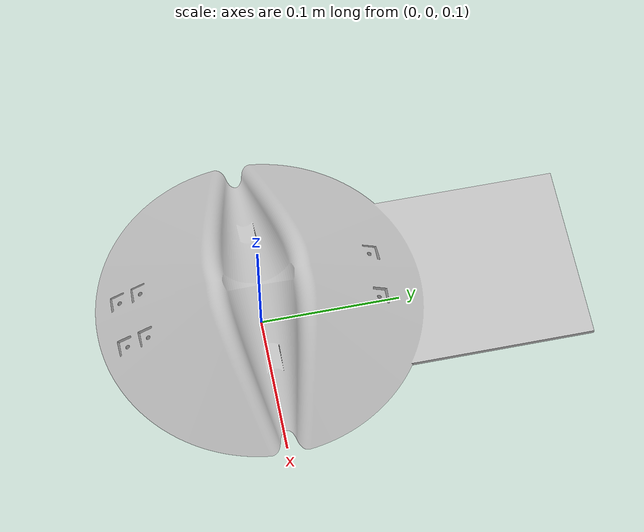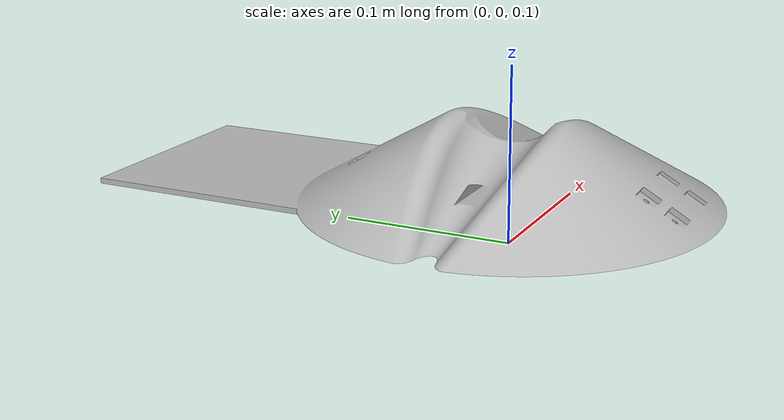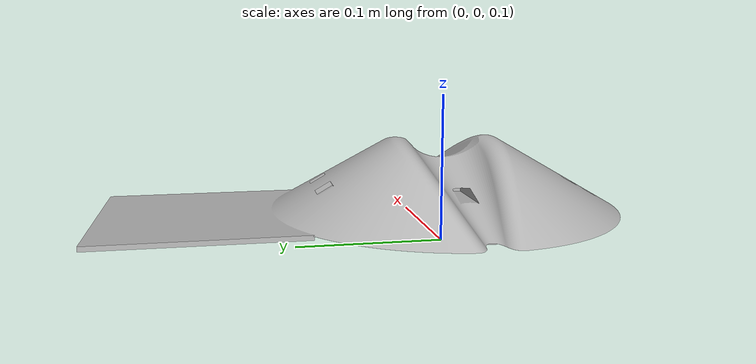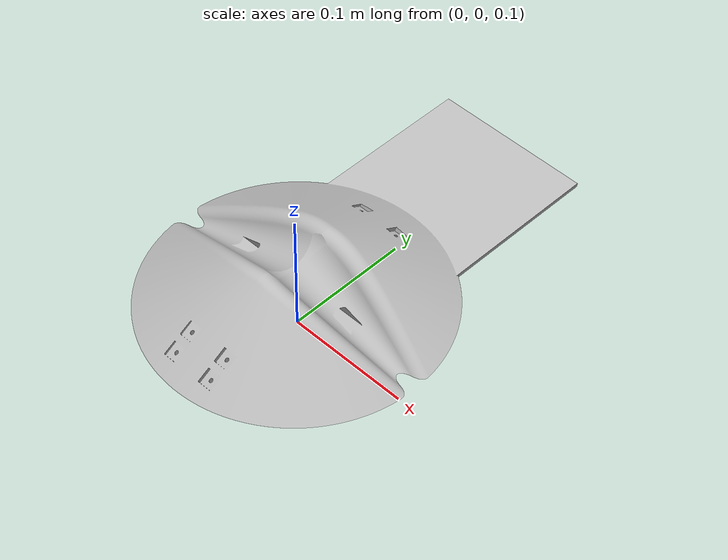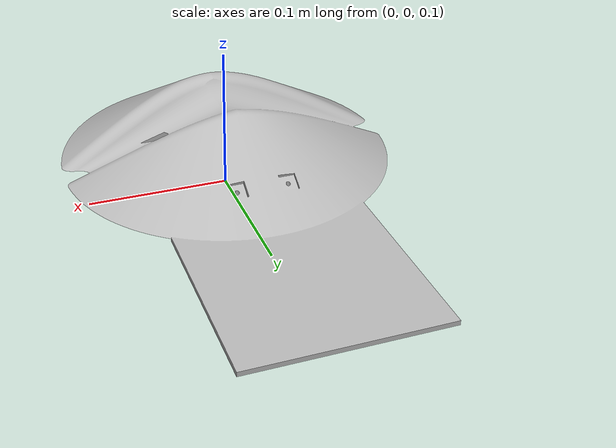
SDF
<?xml version="1.0" ?>
<sdf version="1.5">
    <model name="QuickConnectBase">
        <pose>0 0 0 0 0 0</pose>

        <static>false</static>
        <link name="link">
            <inertial>
                <mass>25.0</mass>
                <inertia>
                <ixx>1</ixx>
                <ixy>0</ixy>
                <ixz>0</ixz>
                <iyy>1</iyy>
                <iyz>0</iyz>
                <izz>1</izz>
                </inertia>
            </inertial>

            <collision name='collision'>
                <pose>0 0 0.125 0 0 0</pose>
                <geometry>
                <mesh>
                    <scale>1 1 1</scale>
                    <uri>model://quick_connect_base/meshes/base.dae</uri>
                </mesh>

                </geometry>
                <surface>
                <contact>
                    <ode>
                    <min_depth>0.001</min_depth>
                    <max_vel>0</max_vel>
                    </ode>
                </contact>
                <friction>
                    <ode/>
                </friction>
                </surface>
            </collision>
            <visual name='visual'>
                <pose>0 0 0.125 0 0 0</pose>
                <geometry>
                <mesh>
                    <scale>1 1 1</scale>
                    <uri>model://quick_connect_base/meshes/base.dae</uri>
                </mesh>
                </geometry>
            </visual>
            <gravity>1</gravity>
        </link>
    </model>
</sdf>
